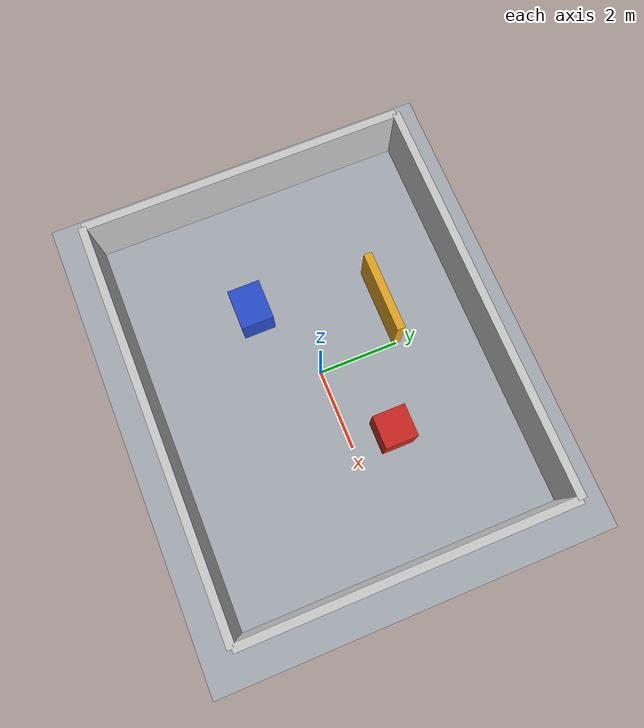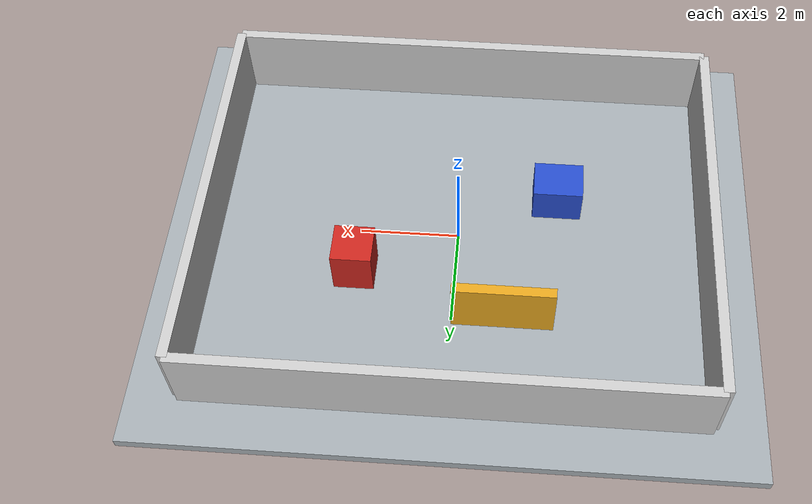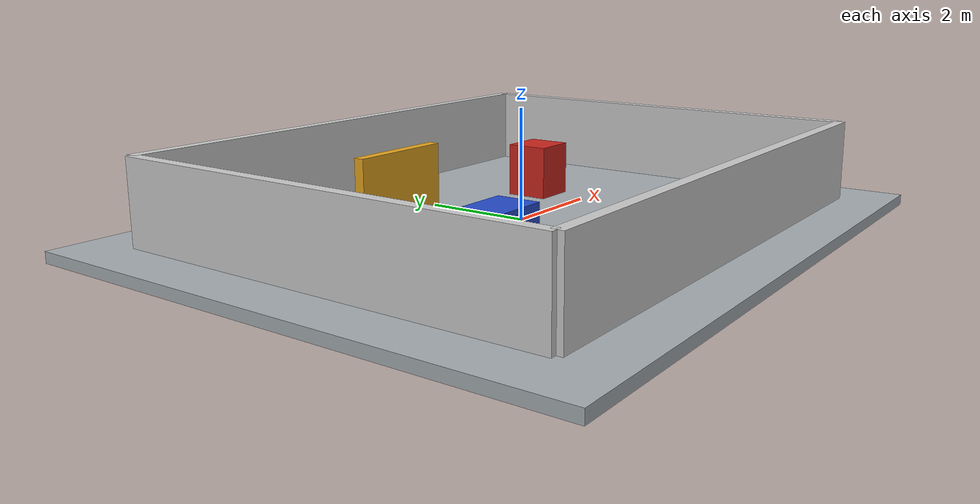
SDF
<?xml version="1.0"?>
<sdf version="1.9">
  <world name="rover_arena">
    <physics name="1ms" type="ignored"><max_step_size>0.001</max_step_size><real_time_factor>1.0</real_time_factor></physics>
    <plugin filename="gz-sim-physics-system" name="gz::sim::systems::Physics"/>
    <plugin filename="gz-sim-user-commands-system" name="gz::sim::systems::UserCommands"/>
    <plugin filename="gz-sim-scene-broadcaster-system" name="gz::sim::systems::SceneBroadcaster"/>
    <plugin filename="gz-sim-sensors-system" name="gz::sim::systems::Sensors"><render_engine>ogre2</render_engine></plugin>
    <plugin filename="gz-sim-imu-system" name="gz::sim::systems::Imu"/>
    <plugin filename="gz-sim-navsat-system" name="gz::sim::systems::NavSat"/>
    <spherical_coordinates><surface_model>EARTH_WGS84</surface_model><world_frame_orientation>ENU</world_frame_orientation><latitude_deg>37.5665</latitude_deg><longitude_deg>126.9780</longitude_deg><elevation>0</elevation><heading_deg>0</heading_deg></spherical_coordinates>
    <gravity>0 0 -9.81</gravity>
    <scene><ambient>0.5 0.5 0.5 1</ambient><background>0.75 0.8 0.9 1</background><shadows>true</shadows></scene>
    <light name="sun" type="directional"><pose>0 0 10 0 0 0</pose><diffuse>0.8 0.8 0.8 1</diffuse><specular>0.2 0.2 0.2 1</specular><direction>-0.4 0.2 -0.9</direction><cast_shadows>true</cast_shadows></light>
    <model name="floor"><static>true</static><pose>0 0 -0.1 0 0 0</pose><link name="link"><collision name="collision"><geometry><box><size>12 10 0.2</size></box></geometry></collision><visual name="visual"><geometry><box><size>12 10 0.2</size></box></geometry><material><ambient>0.65 0.68 0.7 1</ambient><diffuse>0.65 0.68 0.7 1</diffuse></material></visual></link></model>
    <model name="north"><static>true</static><pose>0 4 0.75 0 0 0</pose><link name="link"><collision name="collision"><geometry><box><size>10 0.2 1.5</size></box></geometry></collision><visual name="visual"><geometry><box><size>10 0.2 1.5</size></box></geometry><material><ambient>0.8 0.8 0.8 1</ambient><diffuse>0.8 0.8 0.8 1</diffuse></material></visual></link></model>
    <model name="south"><static>true</static><pose>0 -4 0.75 0 0 0</pose><link name="link"><collision name="collision"><geometry><box><size>10 0.2 1.5</size></box></geometry></collision><visual name="visual"><geometry><box><size>10 0.2 1.5</size></box></geometry><material><ambient>0.8 0.8 0.8 1</ambient><diffuse>0.8 0.8 0.8 1</diffuse></material></visual></link></model>
    <model name="east"><static>true</static><pose>5 0 0.75 0 0 0</pose><link name="link"><collision name="collision"><geometry><box><size>0.2 8 1.5</size></box></geometry></collision><visual name="visual"><geometry><box><size>0.2 8 1.5</size></box></geometry><material><ambient>0.8 0.8 0.8 1</ambient><diffuse>0.8 0.8 0.8 1</diffuse></material></visual></link></model>
    <model name="west"><static>true</static><pose>-5 0 0.75 0 0 0</pose><link name="link"><collision name="collision"><geometry><box><size>0.2 8 1.5</size></box></geometry></collision><visual name="visual"><geometry><box><size>0.2 8 1.5</size></box></geometry><material><ambient>0.8 0.8 0.8 1</ambient><diffuse>0.8 0.8 0.8 1</diffuse></material></visual></link></model>
    <model name="red_box"><static>true</static><pose>2 1 0.5 0 0 0</pose><link name="link"><collision name="collision"><geometry><box><size>0.8 0.8 1</size></box></geometry></collision><visual name="visual"><geometry><box><size>0.8 0.8 1</size></box></geometry><material><ambient>0.8 0.15 0.12 1</ambient><diffuse>0.8 0.15 0.12 1</diffuse></material></visual></link></model>
    <model name="blue_box"><static>true</static><pose>-2 -1 0.4 0 0 0</pose><link name="link"><collision name="collision"><geometry><box><size>1 0.8 0.8</size></box></geometry></collision><visual name="visual"><geometry><box><size>1 0.8 0.8</size></box></geometry><material><ambient>0.15 0.3 0.8 1</ambient><diffuse>0.15 0.3 0.8 1</diffuse></material></visual></link></model>
    <model name="divider"><static>true</static><pose>-1 2 0.6 0 0 0</pose><link name="link"><collision name="collision"><geometry><box><size>2 0.2 1.2</size></box></geometry></collision><visual name="visual"><geometry><box><size>2 0.2 1.2</size></box></geometry><material><ambient>0.9 0.65 0.12 1</ambient><diffuse>0.9 0.65 0.12 1</diffuse></material></visual></link></model>
  </world>
</sdf>
